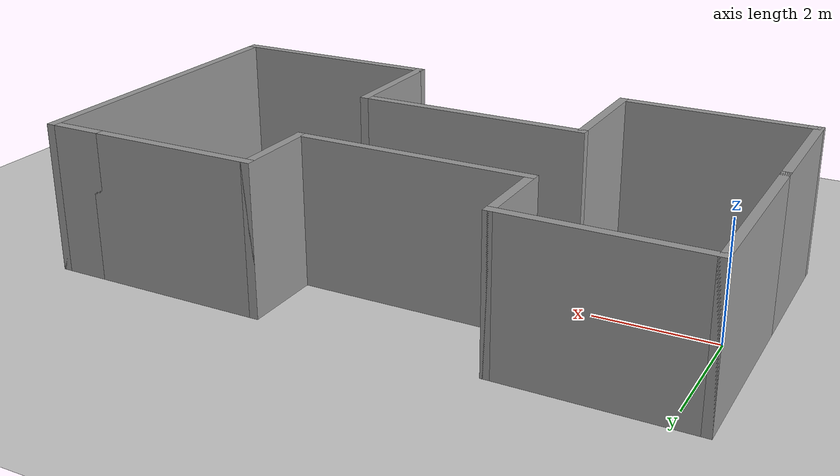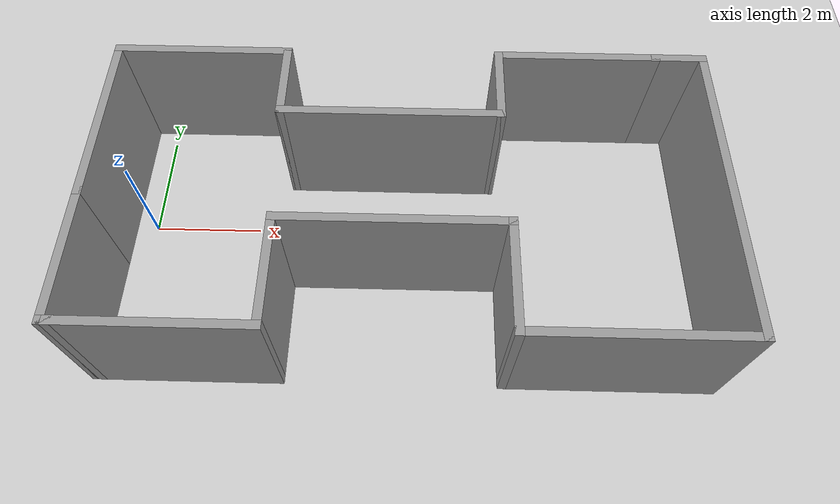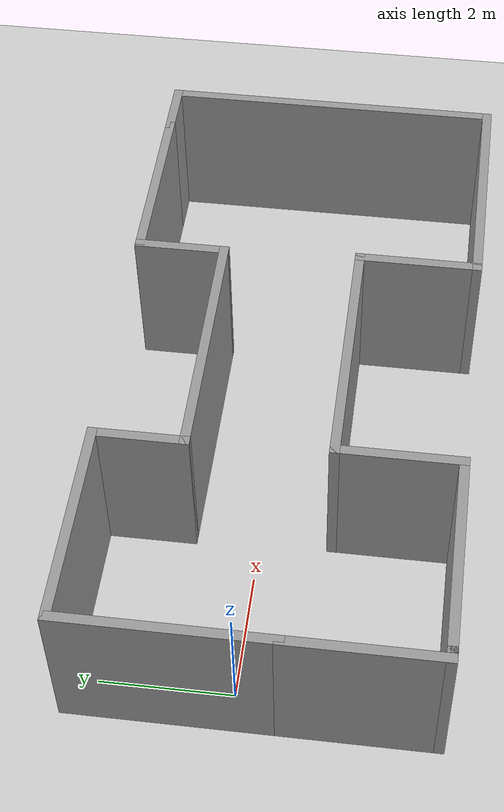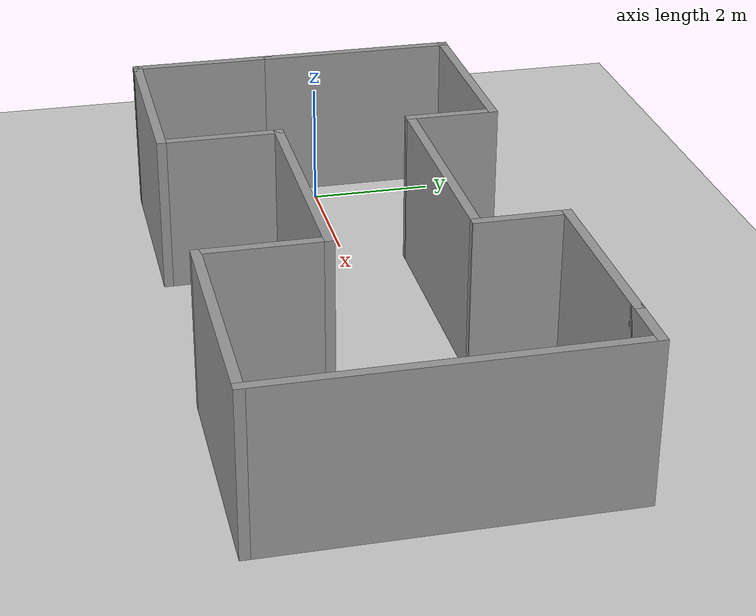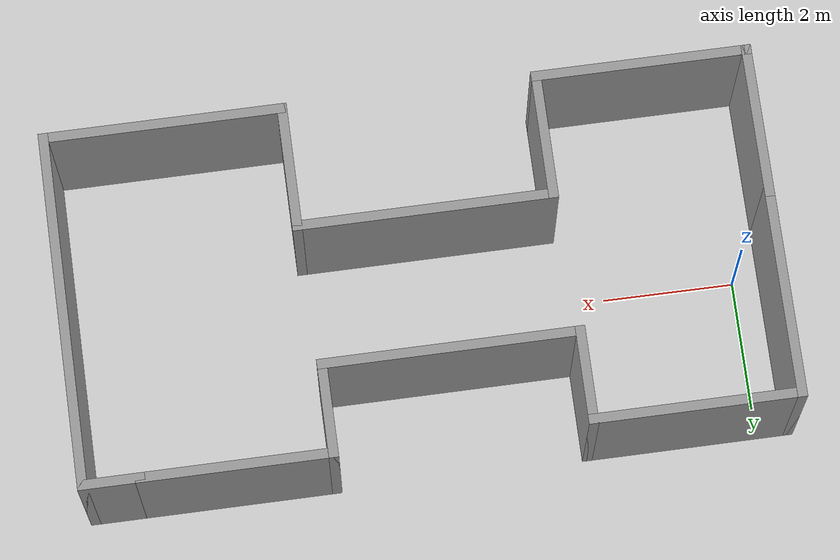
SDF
<sdf version="1.7">
 <world name="default">
  <light name="sun" type="directional">
   <pose>0 0 10 0 -0 0</pose>
   <diffuse>0.8 0.8 0.8 1</diffuse>
   <specular>0.2 0.2 0.2 1</specular>
   <attenuation>
    <range>1000</range>
    <constant>0.9</constant>
    <linear>0.01</linear>
    <quadratic>0.001</quadratic>
   </attenuation>
   <direction>-0.5 0.1 -0.9</direction>
   <spot><inner_angle>0</inner_angle><outer_angle>0</outer_angle><falloff>0</falloff></spot>
  </light>
  <model name="ground_plane">
   <static>1</static>
   <link name="link">
    <collision name="collision">
     <geometry><plane><normal>0 0 1</normal><size>100 100</size></plane></geometry>
     <surface>
      <contact><collide_bitmask>65535</collide_bitmask></contact>
      <friction><ode><mu>100</mu><mu2>50</mu2></ode></friction>
     </surface>
    </collision>
    <visual name="visual">
     <cast_shadows>0</cast_shadows>
     <geometry><plane><normal>0 0 1</normal><size>100 100</size></plane></geometry>
     <material>
      <script><uri>file://media/materials/scripts/gazebo.material</uri><name>Gazebo/Grey</name></script>
     </material>
    </visual>
   </link>
  </model>
  <gravity>0 0 -9.8</gravity>
  <magnetic_field>6e-06 2.3e-05 -4.2e-05</magnetic_field>
  <atmosphere type="adiabatic"/>
  <physics type="ode">
   <max_step_size>0.001</max_step_size>
   <real_time_factor>1</real_time_factor>
   <real_time_update_rate>1000</real_time_update_rate>
  </physics>
  <scene><ambient>0.4 0.4 0.4 1</ambient><background>0.7 0.7 0.7 1</background><shadows>1</shadows></scene>
  <spherical_coordinates>
   <surface_model>EARTH_WGS84</surface_model>
   <latitude_deg>0</latitude_deg>
   <longitude_deg>0</longitude_deg>
   <elevation>0</elevation>
   <heading_deg>0</heading_deg>
  </spherical_coordinates>
  <model name="tunnelx2">
   <pose>4.84397 -0.222649 0 0 -0 0</pose>
   <link name="Wall_0">
    <collision name="Wall_0_Collision">
     <geometry><box><size>3.25 0.15 2.5</size></box></geometry>
     <pose>0 0 1.25 0 -0 0</pose>
    </collision>
    <visual name="Wall_0_Visual">
     <pose>0 0 1.25 0 -0 0</pose>
     <geometry><box><size>3.25 0.15 2.5</size></box></geometry>
     <material>
      <script><uri>file://media/materials/scripts/gazebo.material</uri><name>Gazebo/Grey</name></script>
      <ambient>1 1 1 1</ambient>
     </material>
     <meta><layer>0</layer></meta>
    </visual>
    <pose>-5.325 1.0625 0 0 -0 1.5708</pose>
   </link>
   <link name="Wall_1">
    <collision name="Wall_1_Collision">
     <geometry><box><size>3.25 0.15 2.5</size></box></geometry>
     <pose>0 0 1.25 0 -0 0</pose>
    </collision>
    <visual name="Wall_1_Visual">
     <pose>0 0 1.25 0 -0 0</pose>
     <geometry><box><size>3.25 0.15 2.5</size></box></geometry>
     <material>
      <script><uri>file://media/materials/scripts/gazebo.material</uri><name>Gazebo/Grey</name></script>
      <ambient>1 1 1 1</ambient>
     </material>
     <meta><layer>0</layer></meta>
    </visual>
    <pose>-3.775 2.6125 0 0 -0 0</pose>
   </link>
   <link name="Wall_10">
    <collision name="Wall_10_Collision">
     <geometry><box><size>4 0.15 2.5</size></box></geometry>
     <pose>0 0 1.25 0 -0 0</pose>
    </collision>
    <visual name="Wall_10_Visual">
     <pose>0 0 1.25 0 -0 0</pose>
     <geometry><box><size>4 0.15 2.5</size></box></geometry>
     <material>
      <script><uri>file://media/materials/scripts/gazebo.material</uri><name>Gazebo/Grey</name></script>
      <ambient>1 1 1 1</ambient>
     </material>
     <meta><layer>0</layer></meta>
    </visual>
    <pose>-0.2 -0.8875 0 0 -0 3.14159</pose>
   </link>
   <link name="Wall_11">
    <collision name="Wall_11_Collision">
     <geometry><box><size>2 0.15 2.5</size></box></geometry>
     <pose>0 0 1.25 0 -0 0</pose>
    </collision>
    <visual name="Wall_11_Visual">
     <pose>0 0 1.25 0 -0 0</pose>
     <geometry><box><size>2 0.15 2.5</size></box></geometry>
     <material>
      <script><uri>file://media/materials/scripts/gazebo.material</uri><name>Gazebo/Grey</name></script>
      <ambient>1 1 1 1</ambient>
     </material>
     <meta><layer>0</layer></meta>
    </visual>
    <pose>-2.125 -1.8125 0 0 -0 -1.5708</pose>
   </link>
   <link name="Wall_12">
    <collision name="Wall_12_Collision">
     <geometry><box><size>3.25 0.15 2.5</size></box></geometry>
     <pose>0 0 1.25 0 -0 0</pose>
    </collision>
    <visual name="Wall_12_Visual">
     <pose>0 0 1.25 0 -0 0</pose>
     <geometry><box><size>3.25 0.15 2.5</size></box></geometry>
     <material>
      <script><uri>file://media/materials/scripts/gazebo.material</uri><name>Gazebo/Grey</name></script>
      <ambient>1 1 1 1</ambient>
     </material>
     <meta><layer>0</layer></meta>
    </visual>
    <pose>-3.675 -2.7375 0 0 -0 3.14159</pose>
   </link>
   <link name="Wall_13">
    <collision name="Wall_13_Collision">
     <geometry><box><size>0.15 0.15 2.5</size></box></geometry>
     <pose>0 0 1.25 0 -0 0</pose>
    </collision>
    <visual name="Wall_13_Visual">
     <pose>0 0 1.25 0 -0 0</pose>
     <geometry><box><size>0.15 0.15 2.5</size></box></geometry>
     <material>
      <script><uri>file://media/materials/scripts/gazebo.material</uri><name>Gazebo/Grey</name></script>
      <ambient>1 1 1 1</ambient>
     </material>
     <meta><layer>0</layer></meta>
    </visual>
    <pose>-5.225 -2.7375 0 0 -0 0</pose>
   </link>
   <link name="Wall_14">
    <collision name="Wall_14_Collision">
     <geometry><box><size>0.25 0.15 2.5</size></box></geometry>
     <pose>0 0 1.25 0 -0 0</pose>
    </collision>
    <visual name="Wall_14_Visual">
     <pose>0 0 1.25 0 -0 0</pose>
     <geometry><box><size>0.25 0.15 2.5</size></box></geometry>
     <material>
      <script><uri>file://media/materials/scripts/gazebo.material</uri><name>Gazebo/Grey</name></script>
      <ambient>1 1 1 1</ambient>
     </material>
     <meta><layer>0</layer></meta>
    </visual>
    <pose>-5.275 -2.7375 0 0 -0 3.14159</pose>
   </link>
   <link name="Wall_15">
    <collision name="Wall_15_Collision">
     <geometry><box><size>2.4 0.15 2.5</size></box></geometry>
     <pose>0 0 1.25 0 -0 0</pose>
    </collision>
    <visual name="Wall_15_Visual">
     <pose>0 0 1.25 0 -0 0</pose>
     <geometry><box><size>2.4 0.15 2.5</size></box></geometry>
     <material>
      <script><uri>file://media/materials/scripts/gazebo.material</uri><name>Gazebo/Grey</name></script>
      <ambient>1 1 1 1</ambient>
     </material>
     <meta><layer>0</layer></meta>
    </visual>
    <pose>-5.325 -1.6125 0 0 -0 1.5708</pose>
   </link>
   <link name="Wall_2">
    <collision name="Wall_2_Collision">
     <geometry><box><size>1.5 0.15 2.5</size></box></geometry>
     <pose>0 0 1.25 0 -0 0</pose>
    </collision>
    <visual name="Wall_2_Visual">
     <pose>0 0 1.25 0 -0 0</pose>
     <geometry><box><size>1.5 0.15 2.5</size></box></geometry>
     <material>
      <script><uri>file://media/materials/scripts/gazebo.material</uri><name>Gazebo/Grey</name></script>
      <ambient>1 1 1 1</ambient>
     </material>
     <meta><layer>0</layer></meta>
    </visual>
    <pose>-2.225 1.9375 0 0 -0 -1.5708</pose>
   </link>
   <link name="Wall_3">
    <collision name="Wall_3_Collision">
     <geometry><box><size>4 0.15 2.5</size></box></geometry>
     <pose>0 0 1.25 0 -0 0</pose>
    </collision>
    <visual name="Wall_3_Visual">
     <pose>0 0 1.25 0 -0 0</pose>
     <geometry><box><size>4 0.15 2.5</size></box></geometry>
     <material>
      <script><uri>file://media/materials/scripts/gazebo.material</uri><name>Gazebo/Grey</name></script>
      <ambient>1 1 1 1</ambient>
     </material>
     <meta><layer>0</layer></meta>
    </visual>
    <pose>-0.3 1.2625 0 0 -0 0</pose>
   </link>
   <link name="Wall_4">
    <collision name="Wall_4_Collision">
     <geometry><box><size>1.5 0.15 2.5</size></box></geometry>
     <pose>0 0 1.25 0 -0 0</pose>
    </collision>
    <visual name="Wall_4_Visual">
     <pose>0 0 1.25 0 -0 0</pose>
     <geometry><box><size>1.5 0.15 2.5</size></box></geometry>
     <material>
      <script><uri>file://media/materials/scripts/gazebo.material</uri><name>Gazebo/Grey</name></script>
      <ambient>1 1 1 1</ambient>
     </material>
     <meta><layer>0</layer></meta>
    </visual>
    <pose>1.625 1.9375 0 0 -0 1.5708</pose>
   </link>
   <link name="Wall_5">
    <collision name="Wall_5_Collision">
     <geometry><box><size>3 0.15 2.5</size></box></geometry>
     <pose>0 0 1.25 0 -0 0</pose>
    </collision>
    <visual name="Wall_5_Visual">
     <pose>0 0 1.25 0 -0 0</pose>
     <geometry><box><size>3 0.15 2.5</size></box></geometry>
     <material>
      <script><uri>file://media/materials/scripts/gazebo.material</uri><name>Gazebo/Grey</name></script>
      <ambient>1 1 1 1</ambient>
     </material>
     <meta><layer>0</layer></meta>
    </visual>
    <pose>3.05 2.6125 0 0 -0 0</pose>
   </link>
   <link name="Wall_6">
    <collision name="Wall_6_Collision">
     <geometry><box><size>1 0.15 2.5</size></box></geometry>
     <pose>0 0 1.25 0 -0 0</pose>
    </collision>
    <visual name="Wall_6_Visual">
     <pose>0 0 1.25 0 -0 0</pose>
     <geometry><box><size>1 0.15 2.5</size></box></geometry>
     <material>
      <script><uri>file://media/materials/scripts/gazebo.material</uri><name>Gazebo/Grey</name></script>
      <ambient>1 1 1 1</ambient>
     </material>
     <meta><layer>0</layer></meta>
    </visual>
    <pose>4.9 2.6125 0 0 -0 0</pose>
   </link>
   <link name="Wall_7">
    <collision name="Wall_7_Collision">
     <geometry><box><size>5.5 0.15 2.5</size></box></geometry>
     <pose>0 0 1.25 0 -0 0</pose>
    </collision>
    <visual name="Wall_7_Visual">
     <pose>0 0 1.25 0 -0 0</pose>
     <geometry><box><size>5.5 0.15 2.5</size></box></geometry>
     <material>
      <script><uri>file://media/materials/scripts/gazebo.material</uri><name>Gazebo/Grey</name></script>
      <ambient>1 1 1 1</ambient>
     </material>
     <meta><layer>0</layer></meta>
    </visual>
    <pose>5.325 -0.0625 0 0 -0 -1.5708</pose>
   </link>
   <link name="Wall_8">
    <collision name="Wall_8_Collision">
     <geometry><box><size>3.75 0.15 2.5</size></box></geometry>
     <pose>0 0 1.25 0 -0 0</pose>
    </collision>
    <visual name="Wall_8_Visual">
     <pose>0 0 1.25 0 -0 0</pose>
     <geometry><box><size>3.75 0.15 2.5</size></box></geometry>
     <material>
      <script><uri>file://media/materials/scripts/gazebo.material</uri><name>Gazebo/Grey</name></script>
      <ambient>1 1 1 1</ambient>
     </material>
     <meta><layer>0</layer></meta>
    </visual>
    <pose>3.525 -2.7375 0 0 -0 3.14159</pose>
   </link>
   <link name="Wall_9">
    <collision name="Wall_9_Collision">
     <geometry><box><size>2 0.15 2.5</size></box></geometry>
     <pose>0 0 1.25 0 -0 0</pose>
    </collision>
    <visual name="Wall_9_Visual">
     <pose>0 0 1.25 0 -0 0</pose>
     <geometry><box><size>2 0.15 2.5</size></box></geometry>
     <material>
      <script><uri>file://media/materials/scripts/gazebo.material</uri><name>Gazebo/Grey</name></script>
      <ambient>1 1 1 1</ambient>
     </material>
     <meta><layer>0</layer></meta>
    </visual>
    <pose>1.725 -1.8125 0 0 -0 1.5708</pose>
   </link>
   <static>1</static>
  </model>
 </world>
</sdf>
